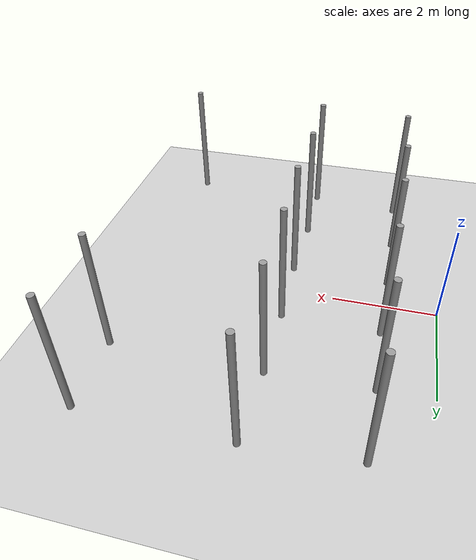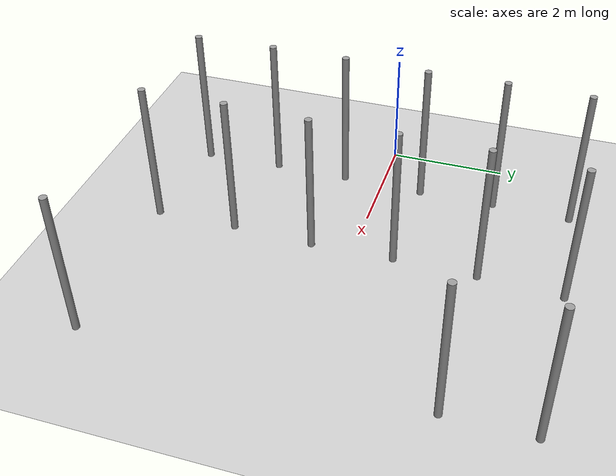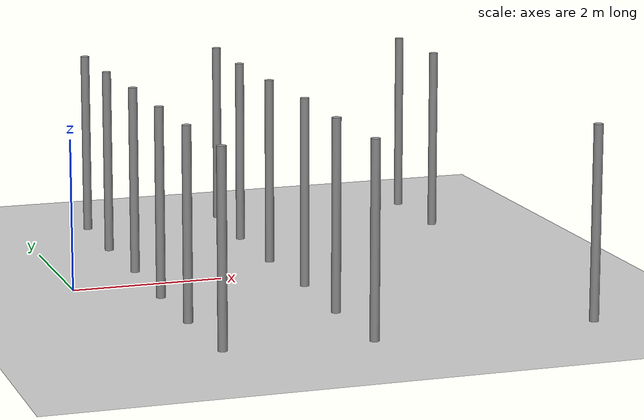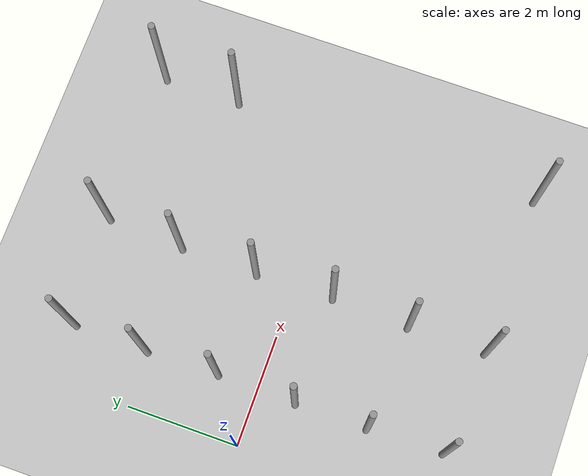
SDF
<sdf version="1.6">
 <world name="default">
  <model name="ground_plane">
   <static>1</static>
   <link name="link">
    <collision name="collision">
     <geometry><plane><normal>0 0 1</normal><size>100 100</size></plane></geometry>
     <surface><friction><ode><mu>100</mu><mu2>50</mu2></ode></friction></surface>
    </collision>
    <visual name="visual">
     <cast_shadows>0</cast_shadows>
     <geometry><plane><normal>0 0 1</normal><size>100 100</size></plane></geometry>
     <material>
      <script><uri>file://media/materials/scripts/gazebo.material</uri><name>Gazebo/Grey</name></script>
     </material>
    </visual>
   </link>
  </model>
  <model name="pole_9">
   <link name="link_0">
    <inertial>
     <mass>0.0364582</mass>
     <inertia>
      <ixx>0.00312124</ixx>
      <ixy>0</ixy>
      <ixz>0</ixz>
      <iyy>0.00312124</iyy>
      <iyz>0</iyz>
      <izz>0.00016615</izz>
     </inertia>
    </inertial>
    <visual name="visual">
     <geometry><cylinder><radius>0.06</radius><length>2.5</length></cylinder></geometry>
     <material>
      <lighting>1</lighting>
      <script><uri>file://media/materials/scripts/gazebo.material</uri><name>Gazebo/Grey</name></script>
      <ambient>0.3 0.3 0.3 1</ambient>
      <diffuse>0.7 0.7 0.7 1</diffuse>
      <specular>0.01 0.01 0.01 1</specular>
      <emissive>0 0 0 1</emissive>
      <shader type="vertex"><normal_map>__default__</normal_map></shader>
     </material>
    </visual>
    <collision name="collision">
     <geometry><cylinder><radius>0.06</radius><length>2.5</length></cylinder></geometry>
     <surface>
      <friction>
       <ode><mu>1</mu><mu2>1</mu2><fdir1>0 0 0</fdir1><slip1>0</slip1><slip2>0</slip2></ode>
       <torsional>
        <coefficient>1</coefficient>
        <patch_radius>0</patch_radius>
        <surface_radius>0</surface_radius>
        <use_patch_radius>1</use_patch_radius>
        <ode><slip>0</slip></ode>
       </torsional>
      </friction>
      <bounce><restitution_coefficient>0</restitution_coefficient><threshold>1e+06</threshold></bounce>
      <contact>
       <collide_without_contact>0</collide_without_contact>
       <collide_without_contact_bitmask>1</collide_without_contact_bitmask>
       <collide_bitmask>1</collide_bitmask>
       <ode>
        <soft_cfm>0</soft_cfm>
        <soft_erp>0.2</soft_erp>
        <kp>1e+13</kp>
        <kd>1</kd>
        <max_vel>0.01</max_vel>
        <min_depth>0</min_depth>
       </ode>
       <bullet>
        <split_impulse>1</split_impulse>
        <split_impulse_penetration_threshold>-0.01</split_impulse_penetration_threshold>
        <soft_cfm>0</soft_cfm>
        <soft_erp>0.2</soft_erp>
        <kp>1e+13</kp>
        <kd>1</kd>
       </bullet>
      </contact>
     </surface>
    </collision>
   </link>
   <static>0</static>
   <pose>2.90022 0.701654 1.24999 -1e-06 1e-06 -0.050657</pose>
  </model>
  <model name="pole_11">
   <link name="link_0">
    <inertial>
     <mass>0.0364582</mass>
     <inertia>
      <ixx>0.00312124</ixx>
      <ixy>0</ixy>
      <ixz>0</ixz>
      <iyy>0.00312124</iyy>
      <iyz>0</iyz>
      <izz>0.00016615</izz>
     </inertia>
    </inertial>
    <visual name="visual">
     <geometry><cylinder><radius>0.06</radius><length>2.5</length></cylinder></geometry>
     <material>
      <lighting>1</lighting>
      <script><uri>file://media/materials/scripts/gazebo.material</uri><name>Gazebo/Grey</name></script>
      <ambient>0.3 0.3 0.3 1</ambient>
      <diffuse>0.7 0.7 0.7 1</diffuse>
      <specular>0.01 0.01 0.01 1</specular>
      <emissive>0 0 0 1</emissive>
      <shader type="vertex"><normal_map>__default__</normal_map></shader>
     </material>
    </visual>
    <collision name="collision">
     <geometry><cylinder><radius>0.06</radius><length>2.5</length></cylinder></geometry>
     <surface>
      <friction>
       <ode><mu>1</mu><mu2>1</mu2><fdir1>0 0 0</fdir1><slip1>0</slip1><slip2>0</slip2></ode>
       <torsional>
        <coefficient>1</coefficient>
        <patch_radius>0</patch_radius>
        <surface_radius>0</surface_radius>
        <use_patch_radius>1</use_patch_radius>
        <ode><slip>0</slip></ode>
       </torsional>
      </friction>
      <bounce><restitution_coefficient>0</restitution_coefficient><threshold>1e+06</threshold></bounce>
      <contact>
       <collide_without_contact>0</collide_without_contact>
       <collide_without_contact_bitmask>1</collide_without_contact_bitmask>
       <collide_bitmask>1</collide_bitmask>
       <ode>
        <soft_cfm>0</soft_cfm>
        <soft_erp>0.2</soft_erp>
        <kp>1e+13</kp>
        <kd>1</kd>
        <max_vel>0.01</max_vel>
        <min_depth>0</min_depth>
       </ode>
       <bullet>
        <split_impulse>1</split_impulse>
        <split_impulse_penetration_threshold>-0.01</split_impulse_penetration_threshold>
        <soft_cfm>0</soft_cfm>
        <soft_erp>0.2</soft_erp>
        <kp>1e+13</kp>
        <kd>1</kd>
       </bullet>
      </contact>
     </surface>
    </collision>
   </link>
   <static>0</static>
   <pose>2.93708 -0.698423 1.24999 0 1e-06 -0.0353</pose>
  </model>
  <model name="pole">
   <link name="link_0">
    <inertial>
     <mass>0.0364582</mass>
     <inertia>
      <ixx>0.00312124</ixx>
      <ixy>0</ixy>
      <ixz>0</ixz>
      <iyy>0.00312124</iyy>
      <iyz>0</iyz>
      <izz>0.00016615</izz>
     </inertia>
    </inertial>
    <visual name="visual">
     <geometry><cylinder><radius>0.06</radius><length>2.5</length></cylinder></geometry>
     <material>
      <lighting>1</lighting>
      <script><uri>file://media/materials/scripts/gazebo.material</uri><name>Gazebo/Grey</name></script>
      <ambient>0.3 0.3 0.3 1</ambient>
      <diffuse>0.7 0.7 0.7 1</diffuse>
      <specular>0.01 0.01 0.01 1</specular>
      <emissive>0 0 0 1</emissive>
      <shader type="vertex"><normal_map>__default__</normal_map></shader>
     </material>
    </visual>
    <collision name="collision">
     <geometry><cylinder><radius>0.06</radius><length>2.5</length></cylinder></geometry>
     <surface>
      <friction>
       <ode><mu>1</mu><mu2>1</mu2><fdir1>0 0 0</fdir1><slip1>0</slip1><slip2>0</slip2></ode>
       <torsional>
        <coefficient>1</coefficient>
        <patch_radius>0</patch_radius>
        <surface_radius>0</surface_radius>
        <use_patch_radius>1</use_patch_radius>
        <ode><slip>0</slip></ode>
       </torsional>
      </friction>
      <bounce><restitution_coefficient>0</restitution_coefficient><threshold>1e+06</threshold></bounce>
      <contact>
       <collide_without_contact>0</collide_without_contact>
       <collide_without_contact_bitmask>1</collide_without_contact_bitmask>
       <collide_bitmask>1</collide_bitmask>
       <ode>
        <soft_cfm>0</soft_cfm>
        <soft_erp>0.2</soft_erp>
        <kp>1e+13</kp>
        <kd>1</kd>
        <max_vel>0.01</max_vel>
        <min_depth>0</min_depth>
       </ode>
       <bullet>
        <split_impulse>1</split_impulse>
        <split_impulse_penetration_threshold>-0.01</split_impulse_penetration_threshold>
        <soft_cfm>0</soft_cfm>
        <soft_erp>0.2</soft_erp>
        <kp>1e+13</kp>
        <kd>1</kd>
       </bullet>
      </contact>
     </surface>
    </collision>
   </link>
   <static>0</static>
   <pose>2.90013 -3.49885 1.24999 -1e-06 1e-06 -0.030411</pose>
  </model>
  <model name="pole_12">
   <link name="link_0">
    <inertial>
     <mass>0.0364582</mass>
     <inertia>
      <ixx>0.00312124</ixx>
      <ixy>0</ixy>
      <ixz>0</ixz>
      <iyy>0.00312124</iyy>
      <iyz>0</iyz>
      <izz>0.00016615</izz>
     </inertia>
    </inertial>
    <visual name="visual">
     <geometry><cylinder><radius>0.06</radius><length>2.5</length></cylinder></geometry>
     <material>
      <lighting>1</lighting>
      <script><uri>file://media/materials/scripts/gazebo.material</uri><name>Gazebo/Grey</name></script>
      <ambient>0.3 0.3 0.3 1</ambient>
      <diffuse>0.7 0.7 0.7 1</diffuse>
      <specular>0.01 0.01 0.01 1</specular>
      <emissive>0 0 0 1</emissive>
      <shader type="vertex"><normal_map>__default__</normal_map></shader>
     </material>
    </visual>
    <collision name="collision">
     <geometry><cylinder><radius>0.06</radius><length>2.5</length></cylinder></geometry>
     <surface>
      <friction>
       <ode><mu>1</mu><mu2>1</mu2><fdir1>0 0 0</fdir1><slip1>0</slip1><slip2>0</slip2></ode>
       <torsional>
        <coefficient>1</coefficient>
        <patch_radius>0</patch_radius>
        <surface_radius>0</surface_radius>
        <use_patch_radius>1</use_patch_radius>
        <ode><slip>0</slip></ode>
       </torsional>
      </friction>
      <bounce><restitution_coefficient>0</restitution_coefficient><threshold>1e+06</threshold></bounce>
      <contact>
       <collide_without_contact>0</collide_without_contact>
       <collide_without_contact_bitmask>1</collide_without_contact_bitmask>
       <collide_bitmask>1</collide_bitmask>
       <ode>
        <soft_cfm>0</soft_cfm>
        <soft_erp>0.2</soft_erp>
        <kp>1e+13</kp>
        <kd>1</kd>
        <max_vel>0.01</max_vel>
        <min_depth>0</min_depth>
       </ode>
       <bullet>
        <split_impulse>1</split_impulse>
        <split_impulse_penetration_threshold>-0.01</split_impulse_penetration_threshold>
        <soft_cfm>0</soft_cfm>
        <soft_erp>0.2</soft_erp>
        <kp>1e+13</kp>
        <kd>1</kd>
       </bullet>
      </contact>
     </surface>
    </collision>
   </link>
   <static>0</static>
   <pose>2.98887 3.50113 1.25 -1e-06 -1e-06 -0.030996</pose>
  </model>
  <model name="pole_13">
   <link name="link_0">
    <inertial>
     <mass>0.0364582</mass>
     <inertia>
      <ixx>0.00312124</ixx>
      <ixy>0</ixy>
      <ixz>0</ixz>
      <iyy>0.00312124</iyy>
      <iyz>0</iyz>
      <izz>0.00016615</izz>
     </inertia>
    </inertial>
    <visual name="visual">
     <geometry><cylinder><radius>0.06</radius><length>2.5</length></cylinder></geometry>
     <material>
      <lighting>1</lighting>
      <script><uri>file://media/materials/scripts/gazebo.material</uri><name>Gazebo/Grey</name></script>
      <ambient>0.3 0.3 0.3 1</ambient>
      <diffuse>0.7 0.7 0.7 1</diffuse>
      <specular>0.01 0.01 0.01 1</specular>
      <emissive>0 0 0 1</emissive>
      <shader type="vertex"><normal_map>__default__</normal_map></shader>
     </material>
    </visual>
    <collision name="collision">
     <geometry><cylinder><radius>0.06</radius><length>2.5</length></cylinder></geometry>
     <surface>
      <friction>
       <ode><mu>1</mu><mu2>1</mu2><fdir1>0 0 0</fdir1><slip1>0</slip1><slip2>0</slip2></ode>
       <torsional>
        <coefficient>1</coefficient>
        <patch_radius>0</patch_radius>
        <surface_radius>0</surface_radius>
        <use_patch_radius>1</use_patch_radius>
        <ode><slip>0</slip></ode>
       </torsional>
      </friction>
      <bounce><restitution_coefficient>0</restitution_coefficient><threshold>1e+06</threshold></bounce>
      <contact>
       <collide_without_contact>0</collide_without_contact>
       <collide_without_contact_bitmask>1</collide_without_contact_bitmask>
       <collide_bitmask>1</collide_bitmask>
       <ode>
        <soft_cfm>0</soft_cfm>
        <soft_erp>0.2</soft_erp>
        <kp>1e+13</kp>
        <kd>1</kd>
        <max_vel>0.01</max_vel>
        <min_depth>0</min_depth>
       </ode>
       <bullet>
        <split_impulse>1</split_impulse>
        <split_impulse_penetration_threshold>-0.01</split_impulse_penetration_threshold>
        <soft_cfm>0</soft_cfm>
        <soft_erp>0.2</soft_erp>
        <kp>1e+13</kp>
        <kd>1</kd>
       </bullet>
      </contact>
     </surface>
    </collision>
   </link>
   <static>0</static>
   <pose>2.88916 -2.09921 1.24999 -0 1e-06 -0.024737</pose>
  </model>
  <model name="pole_14">
   <link name="link_0">
    <inertial>
     <mass>0.0364582</mass>
     <inertia>
      <ixx>0.00312124</ixx>
      <ixy>0</ixy>
      <ixz>0</ixz>
      <iyy>0.00312124</iyy>
      <iyz>0</iyz>
      <izz>0.00016615</izz>
     </inertia>
    </inertial>
    <visual name="visual">
     <geometry><cylinder><radius>0.06</radius><length>2.5</length></cylinder></geometry>
     <material>
      <lighting>1</lighting>
      <script><uri>file://media/materials/scripts/gazebo.material</uri><name>Gazebo/Grey</name></script>
      <ambient>0.3 0.3 0.3 1</ambient>
      <diffuse>0.7 0.7 0.7 1</diffuse>
      <specular>0.01 0.01 0.01 1</specular>
      <emissive>0 0 0 1</emissive>
      <shader type="vertex"><normal_map>__default__</normal_map></shader>
     </material>
    </visual>
    <collision name="collision">
     <geometry><cylinder><radius>0.06</radius><length>2.5</length></cylinder></geometry>
     <surface>
      <friction>
       <ode><mu>1</mu><mu2>1</mu2><fdir1>0 0 0</fdir1><slip1>0</slip1><slip2>0</slip2></ode>
       <torsional>
        <coefficient>1</coefficient>
        <patch_radius>0</patch_radius>
        <surface_radius>0</surface_radius>
        <use_patch_radius>1</use_patch_radius>
        <ode><slip>0</slip></ode>
       </torsional>
      </friction>
      <bounce><restitution_coefficient>0</restitution_coefficient><threshold>1e+06</threshold></bounce>
      <contact>
       <collide_without_contact>0</collide_without_contact>
       <collide_without_contact_bitmask>1</collide_without_contact_bitmask>
       <collide_bitmask>1</collide_bitmask>
       <ode>
        <soft_cfm>0</soft_cfm>
        <soft_erp>0.2</soft_erp>
        <kp>1e+13</kp>
        <kd>1</kd>
        <max_vel>0.01</max_vel>
        <min_depth>0</min_depth>
       </ode>
       <bullet>
        <split_impulse>1</split_impulse>
        <split_impulse_penetration_threshold>-0.01</split_impulse_penetration_threshold>
        <soft_cfm>0</soft_cfm>
        <soft_erp>0.2</soft_erp>
        <kp>1e+13</kp>
        <kd>1</kd>
       </bullet>
      </contact>
     </surface>
    </collision>
   </link>
   <static>0</static>
   <pose>2.91099 2.10109 1.25 -0 1e-06 -0.027564</pose>
  </model>
  <model name="pole_16">
   <link name="link_0">
    <inertial>
     <mass>0.0364582</mass>
     <inertia>
      <ixx>0.00312124</ixx>
      <ixy>0</ixy>
      <ixz>0</ixz>
      <iyy>0.00312124</iyy>
      <iyz>0</iyz>
      <izz>0.00016615</izz>
     </inertia>
    </inertial>
    <visual name="visual">
     <geometry><cylinder><radius>0.06</radius><length>2.5</length></cylinder></geometry>
     <material>
      <lighting>1</lighting>
      <script><uri>file://media/materials/scripts/gazebo.material</uri><name>Gazebo/Grey</name></script>
      <ambient>0.3 0.3 0.3 1</ambient>
      <diffuse>0.7 0.7 0.7 1</diffuse>
      <specular>0.01 0.01 0.01 1</specular>
      <emissive>0 0 0 1</emissive>
      <shader type="vertex"><normal_map>__default__</normal_map></shader>
     </material>
    </visual>
    <collision name="collision">
     <geometry><cylinder><radius>0.06</radius><length>2.5</length></cylinder></geometry>
     <surface>
      <friction>
       <ode><mu>1</mu><mu2>1</mu2><fdir1>0 0 0</fdir1><slip1>0</slip1><slip2>0</slip2></ode>
       <torsional>
        <coefficient>1</coefficient>
        <patch_radius>0</patch_radius>
        <surface_radius>0</surface_radius>
        <use_patch_radius>1</use_patch_radius>
        <ode><slip>0</slip></ode>
       </torsional>
      </friction>
      <bounce><restitution_coefficient>0</restitution_coefficient><threshold>1e+06</threshold></bounce>
      <contact>
       <collide_without_contact>0</collide_without_contact>
       <collide_without_contact_bitmask>1</collide_without_contact_bitmask>
       <collide_bitmask>1</collide_bitmask>
       <ode>
        <soft_cfm>0</soft_cfm>
        <soft_erp>0.2</soft_erp>
        <kp>1e+13</kp>
        <kd>1</kd>
        <max_vel>0.01</max_vel>
        <min_depth>0</min_depth>
       </ode>
       <bullet>
        <split_impulse>1</split_impulse>
        <split_impulse_penetration_threshold>-0.01</split_impulse_penetration_threshold>
        <soft_cfm>0</soft_cfm>
        <soft_erp>0.2</soft_erp>
        <kp>1e+13</kp>
        <kd>1</kd>
       </bullet>
      </contact>
     </surface>
    </collision>
   </link>
   <static>0</static>
   <pose>5.80009 -3.49919 1.24999 -1e-06 1e-06 -0.028991</pose>
  </model>
  <model name="pole_18">
   <link name="link_0">
    <inertial>
     <mass>0.0364582</mass>
     <inertia>
      <ixx>0.00312124</ixx>
      <ixy>0</ixy>
      <ixz>0</ixz>
      <iyy>0.00312124</iyy>
      <iyz>0</iyz>
      <izz>0.00016615</izz>
     </inertia>
    </inertial>
    <visual name="visual">
     <geometry><cylinder><radius>0.06</radius><length>2.5</length></cylinder></geometry>
     <material>
      <lighting>1</lighting>
      <script><uri>file://media/materials/scripts/gazebo.material</uri><name>Gazebo/Grey</name></script>
      <ambient>0.3 0.3 0.3 1</ambient>
      <diffuse>0.7 0.7 0.7 1</diffuse>
      <specular>0.01 0.01 0.01 1</specular>
      <emissive>0 0 0 1</emissive>
      <shader type="vertex"><normal_map>__default__</normal_map></shader>
     </material>
    </visual>
    <collision name="collision">
     <geometry><cylinder><radius>0.06</radius><length>2.5</length></cylinder></geometry>
     <surface>
      <friction>
       <ode><mu>1</mu><mu2>1</mu2><fdir1>0 0 0</fdir1><slip1>0</slip1><slip2>0</slip2></ode>
       <torsional>
        <coefficient>1</coefficient>
        <patch_radius>0</patch_radius>
        <surface_radius>0</surface_radius>
        <use_patch_radius>1</use_patch_radius>
        <ode><slip>0</slip></ode>
       </torsional>
      </friction>
      <bounce><restitution_coefficient>0</restitution_coefficient><threshold>1e+06</threshold></bounce>
      <contact>
       <collide_without_contact>0</collide_without_contact>
       <collide_without_contact_bitmask>1</collide_without_contact_bitmask>
       <collide_bitmask>1</collide_bitmask>
       <ode>
        <soft_cfm>0</soft_cfm>
        <soft_erp>0.2</soft_erp>
        <kp>1e+13</kp>
        <kd>1</kd>
        <max_vel>0.01</max_vel>
        <min_depth>0</min_depth>
       </ode>
       <bullet>
        <split_impulse>1</split_impulse>
        <split_impulse_penetration_threshold>-0.01</split_impulse_penetration_threshold>
        <soft_cfm>0</soft_cfm>
        <soft_erp>0.2</soft_erp>
        <kp>1e+13</kp>
        <kd>1</kd>
       </bullet>
      </contact>
     </surface>
    </collision>
   </link>
   <static>0</static>
   <pose>5.8001 2.1008 1.24999 0 0 -0.026987</pose>
  </model>
  <model name="pole_19">
   <link name="link_0">
    <inertial>
     <mass>0.0364582</mass>
     <inertia>
      <ixx>0.00312124</ixx>
      <ixy>0</ixy>
      <ixz>0</ixz>
      <iyy>0.00312124</iyy>
      <iyz>0</iyz>
      <izz>0.00016615</izz>
     </inertia>
    </inertial>
    <visual name="visual">
     <geometry><cylinder><radius>0.06</radius><length>2.5</length></cylinder></geometry>
     <material>
      <lighting>1</lighting>
      <script><uri>file://media/materials/scripts/gazebo.material</uri><name>Gazebo/Grey</name></script>
      <ambient>0.3 0.3 0.3 1</ambient>
      <diffuse>0.7 0.7 0.7 1</diffuse>
      <specular>0.01 0.01 0.01 1</specular>
      <emissive>0 0 0 1</emissive>
      <shader type="vertex"><normal_map>__default__</normal_map></shader>
     </material>
    </visual>
    <collision name="collision">
     <geometry><cylinder><radius>0.06</radius><length>2.5</length></cylinder></geometry>
     <surface>
      <friction>
       <ode><mu>1</mu><mu2>1</mu2><fdir1>0 0 0</fdir1><slip1>0</slip1><slip2>0</slip2></ode>
       <torsional>
        <coefficient>1</coefficient>
        <patch_radius>0</patch_radius>
        <surface_radius>0</surface_radius>
        <use_patch_radius>1</use_patch_radius>
        <ode><slip>0</slip></ode>
       </torsional>
      </friction>
      <bounce><restitution_coefficient>0</restitution_coefficient><threshold>1e+06</threshold></bounce>
      <contact>
       <collide_without_contact>0</collide_without_contact>
       <collide_without_contact_bitmask>1</collide_without_contact_bitmask>
       <collide_bitmask>1</collide_bitmask>
       <ode>
        <soft_cfm>0</soft_cfm>
        <soft_erp>0.2</soft_erp>
        <kp>1e+13</kp>
        <kd>1</kd>
        <max_vel>0.01</max_vel>
        <min_depth>0</min_depth>
       </ode>
       <bullet>
        <split_impulse>1</split_impulse>
        <split_impulse_penetration_threshold>-0.01</split_impulse_penetration_threshold>
        <soft_cfm>0</soft_cfm>
        <soft_erp>0.2</soft_erp>
        <kp>1e+13</kp>
        <kd>1</kd>
       </bullet>
      </contact>
     </surface>
    </collision>
   </link>
   <static>0</static>
   <pose>5.80012 3.50084 1.24999 -0 2e-06 -0.024497</pose>
  </model>
  <model name="pole_9_clone">
   <link name="link_0">
    <inertial>
     <mass>0.0364582</mass>
     <inertia>
      <ixx>0.00312124</ixx>
      <ixy>0</ixy>
      <ixz>0</ixz>
      <iyy>0.00312124</iyy>
      <iyz>0</iyz>
      <izz>0.00016615</izz>
     </inertia>
    </inertial>
    <visual name="visual">
     <geometry><cylinder><radius>0.06</radius><length>2.5</length></cylinder></geometry>
     <material>
      <lighting>1</lighting>
      <script><uri>file://media/materials/scripts/gazebo.material</uri><name>Gazebo/Grey</name></script>
      <ambient>0.3 0.3 0.3 1</ambient>
      <diffuse>0.7 0.7 0.7 1</diffuse>
      <specular>0.01 0.01 0.01 1</specular>
      <emissive>0 0 0 1</emissive>
      <shader type="vertex"><normal_map>__default__</normal_map></shader>
     </material>
    </visual>
    <collision name="collision">
     <geometry><cylinder><radius>0.06</radius><length>2.5</length></cylinder></geometry>
     <surface>
      <friction>
       <ode><mu>1</mu><mu2>1</mu2><fdir1>0 0 0</fdir1><slip1>0</slip1><slip2>0</slip2></ode>
       <torsional>
        <coefficient>1</coefficient>
        <patch_radius>0</patch_radius>
        <surface_radius>0</surface_radius>
        <use_patch_radius>1</use_patch_radius>
        <ode><slip>0</slip></ode>
       </torsional>
      </friction>
      <bounce><restitution_coefficient>0</restitution_coefficient><threshold>1e+06</threshold></bounce>
      <contact>
       <collide_without_contact>0</collide_without_contact>
       <collide_without_contact_bitmask>1</collide_without_contact_bitmask>
       <collide_bitmask>1</collide_bitmask>
       <ode>
        <soft_cfm>0</soft_cfm>
        <soft_erp>0.2</soft_erp>
        <kp>1e+13</kp>
        <kd>1</kd>
        <max_vel>0.01</max_vel>
        <min_depth>0</min_depth>
       </ode>
       <bullet>
        <split_impulse>1</split_impulse>
        <split_impulse_penetration_threshold>-0.01</split_impulse_penetration_threshold>
        <soft_cfm>0</soft_cfm>
        <soft_erp>0.2</soft_erp>
        <kp>1e+13</kp>
        <kd>1</kd>
       </bullet>
      </contact>
     </surface>
    </collision>
   </link>
   <static>0</static>
   <pose>1.01821 0.719605 1.24999 -0 1e-06 -0.052259</pose>
  </model>
  <model name="pole_9_clone_clone">
   <link name="link_0">
    <inertial>
     <mass>0.0364582</mass>
     <inertia>
      <ixx>0.00312124</ixx>
      <ixy>0</ixy>
      <ixz>0</ixz>
      <iyy>0.00312124</iyy>
      <iyz>0</iyz>
      <izz>0.00016615</izz>
     </inertia>
    </inertial>
    <visual name="visual">
     <geometry><cylinder><radius>0.06</radius><length>2.5</length></cylinder></geometry>
     <material>
      <lighting>1</lighting>
      <script><uri>file://media/materials/scripts/gazebo.material</uri><name>Gazebo/Grey</name></script>
      <ambient>0.3 0.3 0.3 1</ambient>
      <diffuse>0.7 0.7 0.7 1</diffuse>
      <specular>0.01 0.01 0.01 1</specular>
      <emissive>0 0 0 1</emissive>
      <shader type="vertex"><normal_map>__default__</normal_map></shader>
     </material>
    </visual>
    <collision name="collision">
     <geometry><cylinder><radius>0.06</radius><length>2.5</length></cylinder></geometry>
     <surface>
      <friction>
       <ode><mu>1</mu><mu2>1</mu2><fdir1>0 0 0</fdir1><slip1>0</slip1><slip2>0</slip2></ode>
       <torsional>
        <coefficient>1</coefficient>
        <patch_radius>0</patch_radius>
        <surface_radius>0</surface_radius>
        <use_patch_radius>1</use_patch_radius>
        <ode><slip>0</slip></ode>
       </torsional>
      </friction>
      <bounce><restitution_coefficient>0</restitution_coefficient><threshold>1e+06</threshold></bounce>
      <contact>
       <collide_without_contact>0</collide_without_contact>
       <collide_without_contact_bitmask>1</collide_without_contact_bitmask>
       <collide_bitmask>1</collide_bitmask>
       <ode>
        <soft_cfm>0</soft_cfm>
        <soft_erp>0.2</soft_erp>
        <kp>1e+13</kp>
        <kd>1</kd>
        <max_vel>0.01</max_vel>
        <min_depth>0</min_depth>
       </ode>
       <bullet>
        <split_impulse>1</split_impulse>
        <split_impulse_penetration_threshold>-0.01</split_impulse_penetration_threshold>
        <soft_cfm>0</soft_cfm>
        <soft_erp>0.2</soft_erp>
        <kp>1e+13</kp>
        <kd>1</kd>
       </bullet>
      </contact>
     </surface>
    </collision>
   </link>
   <static>0</static>
   <pose>0.988437 2.01961 1.24999 -0 1e-06 -0.052021</pose>
  </model>
  <model name="pole_9_clone_clone_clone">
   <link name="link_0">
    <inertial>
     <mass>0.0364582</mass>
     <inertia>
      <ixx>0.00312124</ixx>
      <ixy>0</ixy>
      <ixz>0</ixz>
      <iyy>0.00312124</iyy>
      <iyz>0</iyz>
      <izz>0.00016615</izz>
     </inertia>
    </inertial>
    <visual name="visual">
     <geometry><cylinder><radius>0.06</radius><length>2.5</length></cylinder></geometry>
     <material>
      <lighting>1</lighting>
      <script><uri>file://media/materials/scripts/gazebo.material</uri><name>Gazebo/Grey</name></script>
      <ambient>0.3 0.3 0.3 1</ambient>
      <diffuse>0.7 0.7 0.7 1</diffuse>
      <specular>0.01 0.01 0.01 1</specular>
      <emissive>0 0 0 1</emissive>
      <shader type="vertex"><normal_map>__default__</normal_map></shader>
     </material>
    </visual>
    <collision name="collision">
     <geometry><cylinder><radius>0.06</radius><length>2.5</length></cylinder></geometry>
     <surface>
      <friction>
       <ode><mu>1</mu><mu2>1</mu2><fdir1>0 0 0</fdir1><slip1>0</slip1><slip2>0</slip2></ode>
       <torsional>
        <coefficient>1</coefficient>
        <patch_radius>0</patch_radius>
        <surface_radius>0</surface_radius>
        <use_patch_radius>1</use_patch_radius>
        <ode><slip>0</slip></ode>
       </torsional>
      </friction>
      <bounce><restitution_coefficient>0</restitution_coefficient><threshold>1e+06</threshold></bounce>
      <contact>
       <collide_without_contact>0</collide_without_contact>
       <collide_without_contact_bitmask>1</collide_without_contact_bitmask>
       <collide_bitmask>1</collide_bitmask>
       <ode>
        <soft_cfm>0</soft_cfm>
        <soft_erp>0.2</soft_erp>
        <kp>1e+13</kp>
        <kd>1</kd>
        <max_vel>0.01</max_vel>
        <min_depth>0</min_depth>
       </ode>
       <bullet>
        <split_impulse>1</split_impulse>
        <split_impulse_penetration_threshold>-0.01</split_impulse_penetration_threshold>
        <soft_cfm>0</soft_cfm>
        <soft_erp>0.2</soft_erp>
        <kp>1e+13</kp>
        <kd>1</kd>
       </bullet>
      </contact>
     </surface>
    </collision>
   </link>
   <static>0</static>
   <pose>1.01095 3.35915 1.24999 0 1e-06 -0.052071</pose>
  </model>
  <model name="pole_9_clone_clone_clone_0">
   <link name="link_0">
    <inertial>
     <mass>0.0364582</mass>
     <inertia>
      <ixx>0.00312124</ixx>
      <ixy>0</ixy>
      <ixz>0</ixz>
      <iyy>0.00312124</iyy>
      <iyz>0</iyz>
      <izz>0.00016615</izz>
     </inertia>
    </inertial>
    <visual name="visual">
     <geometry><cylinder><radius>0.06</radius><length>2.5</length></cylinder></geometry>
     <material>
      <lighting>1</lighting>
      <script><uri>file://media/materials/scripts/gazebo.material</uri><name>Gazebo/Grey</name></script>
      <ambient>0.3 0.3 0.3 1</ambient>
      <diffuse>0.7 0.7 0.7 1</diffuse>
      <specular>0.01 0.01 0.01 1</specular>
      <emissive>0 0 0 1</emissive>
      <shader type="vertex"><normal_map>__default__</normal_map></shader>
     </material>
    </visual>
    <collision name="collision">
     <geometry><cylinder><radius>0.06</radius><length>2.5</length></cylinder></geometry>
     <surface>
      <friction>
       <ode><mu>1</mu><mu2>1</mu2><fdir1>0 0 0</fdir1><slip1>0</slip1><slip2>0</slip2></ode>
       <torsional>
        <coefficient>1</coefficient>
        <patch_radius>0</patch_radius>
        <surface_radius>0</surface_radius>
        <use_patch_radius>1</use_patch_radius>
        <ode><slip>0</slip></ode>
       </torsional>
      </friction>
      <bounce><restitution_coefficient>0</restitution_coefficient><threshold>1e+06</threshold></bounce>
      <contact>
       <collide_without_contact>0</collide_without_contact>
       <collide_without_contact_bitmask>1</collide_without_contact_bitmask>
       <collide_bitmask>1</collide_bitmask>
       <ode>
        <soft_cfm>0</soft_cfm>
        <soft_erp>0.2</soft_erp>
        <kp>1e+13</kp>
        <kd>1</kd>
        <max_vel>0.01</max_vel>
        <min_depth>0</min_depth>
       </ode>
       <bullet>
        <split_impulse>1</split_impulse>
        <split_impulse_penetration_threshold>-0.01</split_impulse_penetration_threshold>
        <soft_cfm>0</soft_cfm>
        <soft_erp>0.2</soft_erp>
        <kp>1e+13</kp>
        <kd>1</kd>
       </bullet>
      </contact>
     </surface>
    </collision>
   </link>
   <static>0</static>
   <pose>0.989182 -0.69615 1.25 -1e-06 1e-06 -0.051751</pose>
  </model>
  <model name="pole_9_clone_clone_clone_1">
   <link name="link_0">
    <inertial>
     <mass>0.0364582</mass>
     <inertia>
      <ixx>0.00312124</ixx>
      <ixy>0</ixy>
      <ixz>0</ixz>
      <iyy>0.00312124</iyy>
      <iyz>0</iyz>
      <izz>0.00016615</izz>
     </inertia>
    </inertial>
    <visual name="visual">
     <geometry><cylinder><radius>0.06</radius><length>2.5</length></cylinder></geometry>
     <material>
      <lighting>1</lighting>
      <script><uri>file://media/materials/scripts/gazebo.material</uri><name>Gazebo/Grey</name></script>
      <ambient>0.3 0.3 0.3 1</ambient>
      <diffuse>0.7 0.7 0.7 1</diffuse>
      <specular>0.01 0.01 0.01 1</specular>
      <emissive>0 0 0 1</emissive>
      <shader type="vertex"><normal_map>__default__</normal_map></shader>
     </material>
    </visual>
    <collision name="collision">
     <geometry><cylinder><radius>0.06</radius><length>2.5</length></cylinder></geometry>
     <surface>
      <friction>
       <ode><mu>1</mu><mu2>1</mu2><fdir1>0 0 0</fdir1><slip1>0</slip1><slip2>0</slip2></ode>
       <torsional>
        <coefficient>1</coefficient>
        <patch_radius>0</patch_radius>
        <surface_radius>0</surface_radius>
        <use_patch_radius>1</use_patch_radius>
        <ode><slip>0</slip></ode>
       </torsional>
      </friction>
      <bounce><restitution_coefficient>0</restitution_coefficient><threshold>1e+06</threshold></bounce>
      <contact>
       <collide_without_contact>0</collide_without_contact>
       <collide_without_contact_bitmask>1</collide_without_contact_bitmask>
       <collide_bitmask>1</collide_bitmask>
       <ode>
        <soft_cfm>0</soft_cfm>
        <soft_erp>0.2</soft_erp>
        <kp>1e+13</kp>
        <kd>1</kd>
        <max_vel>0.01</max_vel>
        <min_depth>0</min_depth>
       </ode>
       <bullet>
        <split_impulse>1</split_impulse>
        <split_impulse_penetration_threshold>-0.01</split_impulse_penetration_threshold>
        <soft_cfm>0</soft_cfm>
        <soft_erp>0.2</soft_erp>
        <kp>1e+13</kp>
        <kd>1</kd>
       </bullet>
      </contact>
     </surface>
    </collision>
   </link>
   <static>0</static>
   <pose>0.987244 -1.98737 1.24999 -1e-06 2e-06 -0.051965</pose>
  </model>
  <model name="pole_9_clone_clone_clone_2">
   <link name="link_0">
    <inertial>
     <mass>0.0364582</mass>
     <inertia>
      <ixx>0.00312124</ixx>
      <ixy>0</ixy>
      <ixz>0</ixz>
      <iyy>0.00312124</iyy>
      <iyz>0</iyz>
      <izz>0.00016615</izz>
     </inertia>
    </inertial>
    <visual name="visual">
     <geometry><cylinder><radius>0.06</radius><length>2.5</length></cylinder></geometry>
     <material>
      <lighting>1</lighting>
      <script><uri>file://media/materials/scripts/gazebo.material</uri><name>Gazebo/Grey</name></script>
      <ambient>0.3 0.3 0.3 1</ambient>
      <diffuse>0.7 0.7 0.7 1</diffuse>
      <specular>0.01 0.01 0.01 1</specular>
      <emissive>0 0 0 1</emissive>
      <shader type="vertex"><normal_map>__default__</normal_map></shader>
     </material>
    </visual>
    <collision name="collision">
     <geometry><cylinder><radius>0.06</radius><length>2.5</length></cylinder></geometry>
     <surface>
      <friction>
       <ode><mu>1</mu><mu2>1</mu2><fdir1>0 0 0</fdir1><slip1>0</slip1><slip2>0</slip2></ode>
       <torsional>
        <coefficient>1</coefficient>
        <patch_radius>0</patch_radius>
        <surface_radius>0</surface_radius>
        <use_patch_radius>1</use_patch_radius>
        <ode><slip>0</slip></ode>
       </torsional>
      </friction>
      <bounce><restitution_coefficient>0</restitution_coefficient><threshold>1e+06</threshold></bounce>
      <contact>
       <collide_without_contact>0</collide_without_contact>
       <collide_without_contact_bitmask>1</collide_without_contact_bitmask>
       <collide_bitmask>1</collide_bitmask>
       <ode>
        <soft_cfm>0</soft_cfm>
        <soft_erp>0.2</soft_erp>
        <kp>1e+13</kp>
        <kd>1</kd>
        <max_vel>0.01</max_vel>
        <min_depth>0</min_depth>
       </ode>
       <bullet>
        <split_impulse>1</split_impulse>
        <split_impulse_penetration_threshold>-0.01</split_impulse_penetration_threshold>
        <soft_cfm>0</soft_cfm>
        <soft_erp>0.2</soft_erp>
        <kp>1e+13</kp>
        <kd>1</kd>
       </bullet>
      </contact>
     </surface>
    </collision>
   </link>
   <static>0</static>
   <pose>1.02967 -3.34367 1.24999 -1e-06 1e-06 -0.051819</pose>
  </model>
 </world>
</sdf>
